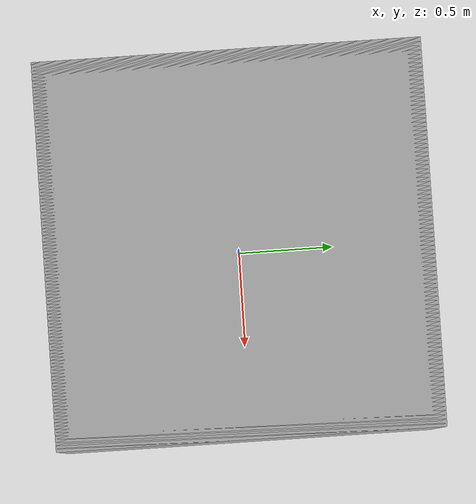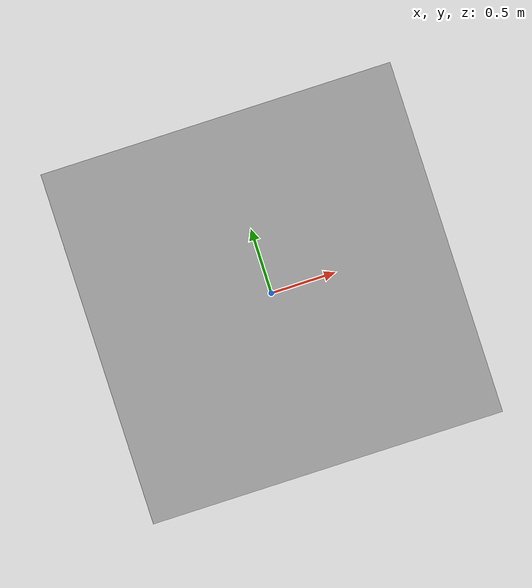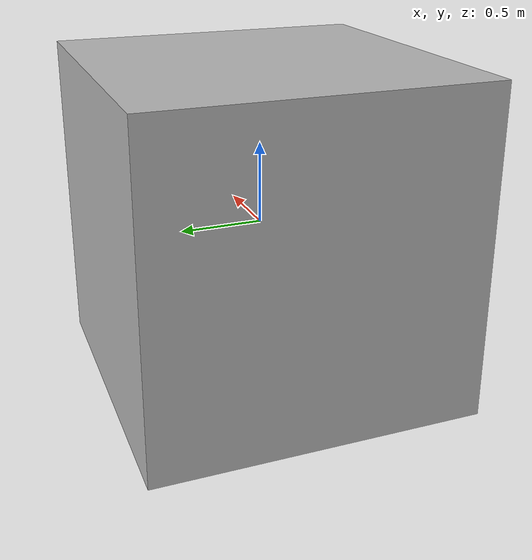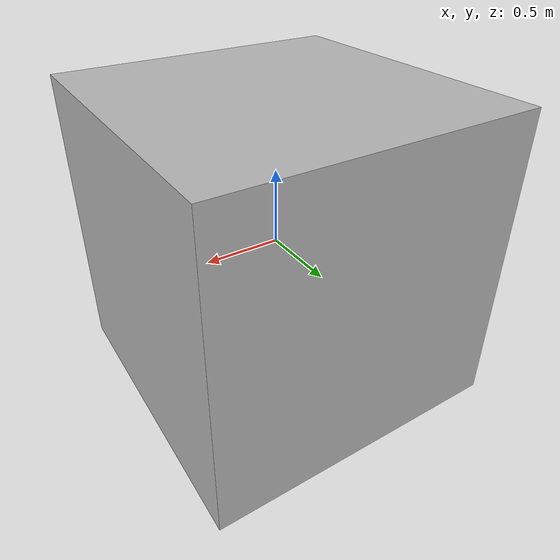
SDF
<?xml version="1.0" ?>
<sdf version="1.6">
	<world name="generation_p2qgt3wby475_world_1">
		<include>
			<uri>model://sun</uri>
		</include>
		<!--Bedroom-->
		<!--Structure models-->
		<model name="wall_0">
			<include>
				<uri>model://generation_p2qgt3wby475_world_1/wall_0</uri>
				<static>true</static>
			</include>
		</model>
		<model name="wall_1">
			<include>
				<uri>model://generation_p2qgt3wby475_world_1/wall_1</uri>
				<static>true</static>
			</include>
		</model>
		<model name="wall_2">
			<include>
				<uri>model://generation_p2qgt3wby475_world_1/wall_2</uri>
				<static>true</static>
			</include>
		</model>
		<model name="wall_3">
			<include>
				<uri>model://generation_p2qgt3wby475_world_1/wall_3</uri>
				<static>true</static>
			</include>
		</model>
		<model name="floor_Bedroom">
			<include>
				<uri>model://generation_p2qgt3wby475_world_1/floor_Bedroom</uri>
				<static>true</static>
			</include>
		</model>
	</world>
</sdf>

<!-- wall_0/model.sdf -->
<sdf version="1.6">
  <model name="wall_0">
    <static>true</static>
    <link name="link">
      <collision name="collision">
        <pose>0 0 0 0 0 0</pose>
        <geometry>
          <mesh>
            <uri>model://generation_p2qgt3wby475_world_1/wall_0/meshes/wall_0.dae</uri>
            <scale>1 1 1</scale>
          </mesh>
        </geometry>
      </collision>
      <visual name="visual">
        <meta>
          <layer>0</layer>
        </meta>
        <pose>0 0 0 0 0 0</pose>
        <geometry>
          <mesh>
            <uri>model://generation_p2qgt3wby475_world_1/wall_0/meshes/wall_0.dae</uri>
            <scale>1 1 1</scale>
          </mesh>
        </geometry>
      </visual>
    </link>
  </model>
</sdf>

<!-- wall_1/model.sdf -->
<sdf version="1.6">
  <model name="wall_1">
    <static>true</static>
    <link name="link">
      <collision name="collision">
        <pose>0 0 0 0 0 0</pose>
        <geometry>
          <mesh>
            <uri>model://generation_p2qgt3wby475_world_1/wall_1/meshes/wall_1.dae</uri>
            <scale>1 1 1</scale>
          </mesh>
        </geometry>
      </collision>
      <visual name="visual">
        <meta>
          <layer>0</layer>
        </meta>
        <pose>0 0 0 0 0 0</pose>
        <geometry>
          <mesh>
            <uri>model://generation_p2qgt3wby475_world_1/wall_1/meshes/wall_1.dae</uri>
            <scale>1 1 1</scale>
          </mesh>
        </geometry>
      </visual>
    </link>
  </model>
</sdf>

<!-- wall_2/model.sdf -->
<sdf version="1.6">
  <model name="wall_2">
    <static>true</static>
    <link name="link">
      <collision name="collision">
        <pose>0 0 0 0 0 0</pose>
        <geometry>
          <mesh>
            <uri>model://generation_p2qgt3wby475_world_1/wall_2/meshes/wall_2.dae</uri>
            <scale>1 1 1</scale>
          </mesh>
        </geometry>
      </collision>
      <visual name="visual">
        <meta>
          <layer>0</layer>
        </meta>
        <pose>0 0 0 0 0 0</pose>
        <geometry>
          <mesh>
            <uri>model://generation_p2qgt3wby475_world_1/wall_2/meshes/wall_2.dae</uri>
            <scale>1 1 1</scale>
          </mesh>
        </geometry>
      </visual>
    </link>
  </model>
</sdf>

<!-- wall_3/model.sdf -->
<sdf version="1.6">
  <model name="wall_3">
    <static>true</static>
    <link name="link">
      <collision name="collision">
        <pose>0 0 0 0 0 0</pose>
        <geometry>
          <mesh>
            <uri>model://generation_p2qgt3wby475_world_1/wall_3/meshes/wall_3.dae</uri>
            <scale>1 1 1</scale>
          </mesh>
        </geometry>
      </collision>
      <visual name="visual">
        <meta>
          <layer>0</layer>
        </meta>
        <pose>0 0 0 0 0 0</pose>
        <geometry>
          <mesh>
            <uri>model://generation_p2qgt3wby475_world_1/wall_3/meshes/wall_3.dae</uri>
            <scale>1 1 1</scale>
          </mesh>
        </geometry>
      </visual>
    </link>
  </model>
</sdf>

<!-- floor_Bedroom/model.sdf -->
<sdf version="1.6">
  <model name="floor_Bedroom">
    <static>true</static>
    <link name="link">
      <collision name="collision">
        <pose>0 0 0 0 0 0</pose>
        <geometry>
          <mesh>
            <uri>model://generation_p2qgt3wby475_world_1/floor_Bedroom/meshes/floor_Bedroom.dae</uri>
            <scale>1 1 1</scale>
          </mesh>
        </geometry>
      </collision>
      <visual name="visual">
        <meta>
          <layer>0</layer>
        </meta>
        <pose>0 0 0 0 0 0</pose>
        <geometry>
          <mesh>
            <uri>model://generation_p2qgt3wby475_world_1/floor_Bedroom/meshes/floor_Bedroom.dae</uri>
            <scale>1 1 1</scale>
          </mesh>
        </geometry>
      </visual>
    </link>
  </model>
</sdf>
